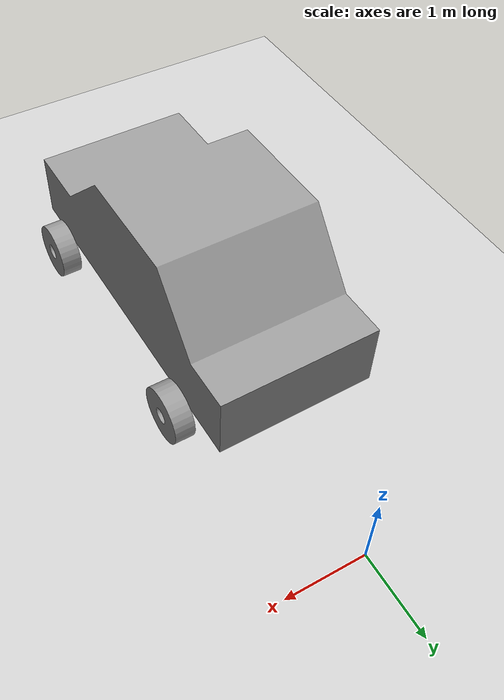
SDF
<sdf version="1.7">
 <world name="default">
  <light name="sun" type="directional">
   <pose>0 0 10 0 -0 0</pose>
   <diffuse>0.8 0.8 0.8 1</diffuse>
   <specular>0.2 0.2 0.2 1</specular>
   <attenuation>
    <range>1000</range>
    <constant>0.9</constant>
    <linear>0.01</linear>
    <quadratic>0.001</quadratic>
   </attenuation>
   <direction>-0.5 0.1 -0.9</direction>
   <spot><inner_angle>0</inner_angle><outer_angle>0</outer_angle><falloff>0</falloff></spot>
  </light>
  <model name="ground_plane">
   <static>1</static>
   <link name="link">
    <collision name="collision">
     <geometry><plane><normal>0 0 1</normal><size>100 100</size></plane></geometry>
     <surface>
      <contact><collide_bitmask>65535</collide_bitmask></contact>
      <friction><ode><mu>100</mu><mu2>50</mu2></ode></friction>
     </surface>
    </collision>
    <visual name="visual">
     <cast_shadows>0</cast_shadows>
     <geometry><plane><normal>0 0 1</normal><size>100 100</size></plane></geometry>
     <material>
      <script><uri>file://media/materials/scripts/gazebo.material</uri><name>Gazebo/Grey</name></script>
     </material>
    </visual>
   </link>
  </model>
  <gravity>0 0 -9.8</gravity>
  <magnetic_field>6e-06 2.3e-05 -4.2e-05</magnetic_field>
  <atmosphere type="adiabatic"/>
  <physics type="ode">
   <max_step_size>0.001</max_step_size>
   <real_time_factor>1</real_time_factor>
   <real_time_update_rate>1000</real_time_update_rate>
  </physics>
  <scene><ambient>0.4 0.4 0.4 1</ambient><background>0.7 0.7 0.7 1</background><shadows>1</shadows></scene>
  <audio><device>default</device></audio>
  <spherical_coordinates>
   <surface_model>EARTH_WGS84</surface_model>
   <latitude_deg>0</latitude_deg>
   <longitude_deg>0</longitude_deg>
   <elevation>0</elevation>
   <heading_deg>0</heading_deg>
  </spherical_coordinates>
  <model name="car_model_full">
   <link name="link_0">
    <inertial>
     <mass>1</mass>
     <inertia>
      <ixx>0.166667</ixx>
      <ixy>0</ixy>
      <ixz>0</ixz>
      <iyy>0.166667</iyy>
      <iyz>0</iyz>
      <izz>0.166667</izz>
     </inertia>
    </inertial>
    <pose>0 0 0.35 0 -0 0</pose>
    <visual name="visual">
     <geometry>
      <mesh>
       <uri>/home/allsparknouvaneonss/Documents/Linux_Developer/my_linux_codes/Robotics/ROS/my_robot_car_ws_ROS/blender_model/car_chasis.dae</uri>
       <scale>1 1 1</scale>
      </mesh>
     </geometry>
     <material>
      <lighting>1</lighting>
      <script><uri>file://media/materials/scripts/gazebo.material</uri><name>Gazebo/Grey</name></script>
      <shader type="pixel"><normal_map>__default__</normal_map></shader>
      <ambient>0.3 0.3 0.3 1</ambient>
      <diffuse>0.7 0.7 0.7 1</diffuse>
      <specular>0.01 0.01 0.01 1</specular>
      <emissive>0 0 0 1</emissive>
     </material>
    </visual>
    <collision name="collision">
     <geometry>
      <mesh>
       <uri>/home/allsparknouvaneonss/Documents/Linux_Developer/my_linux_codes/Robotics/ROS/my_robot_car_ws_ROS/blender_model/car_chasis.dae</uri>
       <scale>1 1 1</scale>
      </mesh>
     </geometry>
     <surface>
      <friction>
       <ode><mu>1</mu><mu2>1</mu2><fdir1>0 0 0</fdir1><slip1>0</slip1><slip2>0</slip2></ode>
       <torsional>
        <coefficient>1</coefficient>
        <patch_radius>0</patch_radius>
        <surface_radius>0</surface_radius>
        <use_patch_radius>1</use_patch_radius>
        <ode><slip>0</slip></ode>
       </torsional>
      </friction>
      <bounce><restitution_coefficient>0</restitution_coefficient><threshold>1e+06</threshold></bounce>
      <contact>
       <collide_without_contact>0</collide_without_contact>
       <collide_without_contact_bitmask>1</collide_without_contact_bitmask>
       <collide_bitmask>1</collide_bitmask>
       <ode>
        <soft_cfm>0</soft_cfm>
        <soft_erp>0.2</soft_erp>
        <kp>1e+13</kp>
        <kd>1</kd>
        <max_vel>0.01</max_vel>
        <min_depth>0</min_depth>
       </ode>
       <bullet>
        <split_impulse>1</split_impulse>
        <split_impulse_penetration_threshold>-0.01</split_impulse_penetration_threshold>
        <soft_cfm>0</soft_cfm>
        <soft_erp>0.2</soft_erp>
        <kp>1e+13</kp>
        <kd>1</kd>
       </bullet>
      </contact>
     </surface>
    </collision>
   </link>
   <link name="link_1">
    <inertial>
     <mass>1</mass>
     <inertia>
      <ixx>0.166667</ixx>
      <ixy>0</ixy>
      <ixz>0</ixz>
      <iyy>0.166667</iyy>
      <iyz>0</iyz>
      <izz>0.166667</izz>
     </inertia>
    </inertial>
    <pose>1.2 -1.5 0.35 0 -0 0</pose>
    <visual name="visual">
     <geometry>
      <mesh>
       <uri>/home/allsparknouvaneonss/Documents/Linux_Developer/my_linux_codes/Robotics/ROS/my_robot_car_ws_ROS/blender_model/car_chasisi_wheel.dae</uri>
       <scale>1 1 1</scale>
      </mesh>
     </geometry>
     <material>
      <lighting>1</lighting>
      <script><uri>file://media/materials/scripts/gazebo.material</uri><name>Gazebo/Grey</name></script>
      <shader type="pixel"><normal_map>__default__</normal_map></shader>
      <ambient>0.3 0.3 0.3 1</ambient>
      <diffuse>0.7 0.7 0.7 1</diffuse>
      <specular>0.01 0.01 0.01 1</specular>
      <emissive>0 0 0 1</emissive>
     </material>
    </visual>
    <collision name="collision">
     <geometry>
      <mesh>
       <uri>/home/allsparknouvaneonss/Documents/Linux_Developer/my_linux_codes/Robotics/ROS/my_robot_car_ws_ROS/blender_model/car_chasisi_wheel.dae</uri>
       <scale>1 1 1</scale>
      </mesh>
     </geometry>
     <surface>
      <friction>
       <ode><mu>1</mu><mu2>1</mu2><fdir1>0 0 0</fdir1><slip1>0</slip1><slip2>0</slip2></ode>
       <torsional>
        <coefficient>1</coefficient>
        <patch_radius>0</patch_radius>
        <surface_radius>0</surface_radius>
        <use_patch_radius>1</use_patch_radius>
        <ode><slip>0</slip></ode>
       </torsional>
      </friction>
      <bounce><restitution_coefficient>0</restitution_coefficient><threshold>1e+06</threshold></bounce>
      <contact>
       <collide_without_contact>0</collide_without_contact>
       <collide_without_contact_bitmask>1</collide_without_contact_bitmask>
       <collide_bitmask>1</collide_bitmask>
       <ode>
        <soft_cfm>0</soft_cfm>
        <soft_erp>0.2</soft_erp>
        <kp>1e+13</kp>
        <kd>1</kd>
        <max_vel>0.01</max_vel>
        <min_depth>0</min_depth>
       </ode>
       <bullet>
        <split_impulse>1</split_impulse>
        <split_impulse_penetration_threshold>-0.01</split_impulse_penetration_threshold>
        <soft_cfm>0</soft_cfm>
        <soft_erp>0.2</soft_erp>
        <kp>1e+13</kp>
        <kd>1</kd>
       </bullet>
      </contact>
     </surface>
    </collision>
   </link>
   <link name="link_1_clone">
    <inertial>
     <mass>1</mass>
     <inertia>
      <ixx>0.166667</ixx>
      <ixy>0</ixy>
      <ixz>0</ixz>
      <iyy>0.166667</iyy>
      <iyz>0</iyz>
      <izz>0.166667</izz>
     </inertia>
    </inertial>
    <pose>-1.2 -1.5 0.35 0 -0 0</pose>
    <visual name="visual">
     <geometry>
      <mesh>
       <uri>/home/allsparknouvaneonss/Documents/Linux_Developer/my_linux_codes/Robotics/ROS/my_robot_car_ws_ROS/blender_model/car_chasisi_wheel.dae</uri>
       <scale>1 1 1</scale>
      </mesh>
     </geometry>
     <material>
      <lighting>1</lighting>
      <script><uri>file://media/materials/scripts/gazebo.material</uri><name>Gazebo/Grey</name></script>
      <shader type="pixel"><normal_map>__default__</normal_map></shader>
      <ambient>0.3 0.3 0.3 1</ambient>
      <diffuse>0.7 0.7 0.7 1</diffuse>
      <specular>0.01 0.01 0.01 1</specular>
      <emissive>0 0 0 1</emissive>
     </material>
    </visual>
    <collision name="collision">
     <geometry>
      <mesh>
       <uri>/home/allsparknouvaneonss/Documents/Linux_Developer/my_linux_codes/Robotics/ROS/my_robot_car_ws_ROS/blender_model/car_chasisi_wheel.dae</uri>
       <scale>1 1 1</scale>
      </mesh>
     </geometry>
     <surface>
      <friction>
       <ode><mu>1</mu><mu2>1</mu2><fdir1>0 0 0</fdir1><slip1>0</slip1><slip2>0</slip2></ode>
       <torsional>
        <coefficient>1</coefficient>
        <patch_radius>0</patch_radius>
        <surface_radius>0</surface_radius>
        <use_patch_radius>1</use_patch_radius>
        <ode><slip>0</slip></ode>
       </torsional>
      </friction>
      <bounce><restitution_coefficient>0</restitution_coefficient><threshold>1e+06</threshold></bounce>
      <contact>
       <collide_without_contact>0</collide_without_contact>
       <collide_without_contact_bitmask>1</collide_without_contact_bitmask>
       <collide_bitmask>1</collide_bitmask>
       <ode>
        <soft_cfm>0</soft_cfm>
        <soft_erp>0.2</soft_erp>
        <kp>1e+13</kp>
        <kd>1</kd>
        <max_vel>0.01</max_vel>
        <min_depth>0</min_depth>
       </ode>
       <bullet>
        <split_impulse>1</split_impulse>
        <split_impulse_penetration_threshold>-0.01</split_impulse_penetration_threshold>
        <soft_cfm>0</soft_cfm>
        <soft_erp>0.2</soft_erp>
        <kp>1e+13</kp>
        <kd>1</kd>
       </bullet>
      </contact>
     </surface>
    </collision>
   </link>
   <link name="link_1_clone_0">
    <inertial>
     <mass>1</mass>
     <inertia>
      <ixx>0.166667</ixx>
      <ixy>0</ixy>
      <ixz>0</ixz>
      <iyy>0.166667</iyy>
      <iyz>0</iyz>
      <izz>0.166667</izz>
     </inertia>
    </inertial>
    <pose>1.2 1.5 0.35 0 -0 0</pose>
    <visual name="visual">
     <geometry>
      <mesh>
       <uri>/home/allsparknouvaneonss/Documents/Linux_Developer/my_linux_codes/Robotics/ROS/my_robot_car_ws_ROS/blender_model/car_chasisi_wheel.dae</uri>
       <scale>1 1 1</scale>
      </mesh>
     </geometry>
     <material>
      <lighting>1</lighting>
      <script><uri>file://media/materials/scripts/gazebo.material</uri><name>Gazebo/Grey</name></script>
      <shader type="pixel"><normal_map>__default__</normal_map></shader>
      <ambient>0.3 0.3 0.3 1</ambient>
      <diffuse>0.7 0.7 0.7 1</diffuse>
      <specular>0.01 0.01 0.01 1</specular>
      <emissive>0 0 0 1</emissive>
     </material>
    </visual>
    <collision name="collision">
     <geometry>
      <mesh>
       <uri>/home/allsparknouvaneonss/Documents/Linux_Developer/my_linux_codes/Robotics/ROS/my_robot_car_ws_ROS/blender_model/car_chasisi_wheel.dae</uri>
       <scale>1 1 1</scale>
      </mesh>
     </geometry>
     <surface>
      <friction>
       <ode><mu>1</mu><mu2>1</mu2><fdir1>0 0 0</fdir1><slip1>0</slip1><slip2>0</slip2></ode>
       <torsional>
        <coefficient>1</coefficient>
        <patch_radius>0</patch_radius>
        <surface_radius>0</surface_radius>
        <use_patch_radius>1</use_patch_radius>
        <ode><slip>0</slip></ode>
       </torsional>
      </friction>
      <bounce><restitution_coefficient>0</restitution_coefficient><threshold>1e+06</threshold></bounce>
      <contact>
       <collide_without_contact>0</collide_without_contact>
       <collide_without_contact_bitmask>1</collide_without_contact_bitmask>
       <collide_bitmask>1</collide_bitmask>
       <ode>
        <soft_cfm>0</soft_cfm>
        <soft_erp>0.2</soft_erp>
        <kp>1e+13</kp>
        <kd>1</kd>
        <max_vel>0.01</max_vel>
        <min_depth>0</min_depth>
       </ode>
       <bullet>
        <split_impulse>1</split_impulse>
        <split_impulse_penetration_threshold>-0.01</split_impulse_penetration_threshold>
        <soft_cfm>0</soft_cfm>
        <soft_erp>0.2</soft_erp>
        <kp>1e+13</kp>
        <kd>1</kd>
       </bullet>
      </contact>
     </surface>
    </collision>
   </link>
   <link name="link_1_clone_1">
    <inertial>
     <mass>1</mass>
     <inertia>
      <ixx>0.166667</ixx>
      <ixy>0</ixy>
      <ixz>0</ixz>
      <iyy>0.166667</iyy>
      <iyz>0</iyz>
      <izz>0.166667</izz>
     </inertia>
    </inertial>
    <pose>-1.2 1.5 0.35 0 -0 0</pose>
    <visual name="visual">
     <geometry>
      <mesh>
       <uri>/home/allsparknouvaneonss/Documents/Linux_Developer/my_linux_codes/Robotics/ROS/my_robot_car_ws_ROS/blender_model/car_chasisi_wheel.dae</uri>
       <scale>1 1 1</scale>
      </mesh>
     </geometry>
     <material>
      <lighting>1</lighting>
      <script><uri>file://media/materials/scripts/gazebo.material</uri><name>Gazebo/Grey</name></script>
      <shader type="pixel"><normal_map>__default__</normal_map></shader>
      <ambient>0.3 0.3 0.3 1</ambient>
      <diffuse>0.7 0.7 0.7 1</diffuse>
      <specular>0.01 0.01 0.01 1</specular>
      <emissive>0 0 0 1</emissive>
     </material>
    </visual>
    <collision name="collision">
     <geometry>
      <mesh>
       <uri>/home/allsparknouvaneonss/Documents/Linux_Developer/my_linux_codes/Robotics/ROS/my_robot_car_ws_ROS/blender_model/car_chasisi_wheel.dae</uri>
       <scale>1 1 1</scale>
      </mesh>
     </geometry>
     <surface>
      <friction>
       <ode><mu>1</mu><mu2>1</mu2><fdir1>0 0 0</fdir1><slip1>0</slip1><slip2>0</slip2></ode>
       <torsional>
        <coefficient>1</coefficient>
        <patch_radius>0</patch_radius>
        <surface_radius>0</surface_radius>
        <use_patch_radius>1</use_patch_radius>
        <ode><slip>0</slip></ode>
       </torsional>
      </friction>
      <bounce><restitution_coefficient>0</restitution_coefficient><threshold>1e+06</threshold></bounce>
      <contact>
       <collide_without_contact>0</collide_without_contact>
       <collide_without_contact_bitmask>1</collide_without_contact_bitmask>
       <collide_bitmask>1</collide_bitmask>
       <ode>
        <soft_cfm>0</soft_cfm>
        <soft_erp>0.2</soft_erp>
        <kp>1e+13</kp>
        <kd>1</kd>
        <max_vel>0.01</max_vel>
        <min_depth>0</min_depth>
       </ode>
       <bullet>
        <split_impulse>1</split_impulse>
        <split_impulse_penetration_threshold>-0.01</split_impulse_penetration_threshold>
        <soft_cfm>0</soft_cfm>
        <soft_erp>0.2</soft_erp>
        <kp>1e+13</kp>
        <kd>1</kd>
       </bullet>
      </contact>
     </surface>
    </collision>
   </link>
   <joint name="Front_Left" type="revolute">
    <parent>link_0</parent>
    <child>link_1</child>
    <axis>
     <xyz>1 0 0</xyz>
     <limit>
      <lower>-1.79769e+308</lower>
      <upper>1.79769e+308</upper>
      <effort>-1</effort>
      <velocity>-1</velocity>
     </limit>
     <dynamics>
      <spring_reference>0</spring_reference>
      <spring_stiffness>0</spring_stiffness>
      <damping>0</damping>
      <friction>0</friction>
     </dynamics>
    </axis>
    <physics>
     <ode><limit><cfm>0</cfm><erp>0.2</erp></limit><suspension><cfm>0</cfm><erp>0.2</erp></suspension></ode>
    </physics>
   </joint>
   <joint name="Front_Right" type="revolute">
    <parent>link_0</parent>
    <child>link_1_clone</child>
    <axis>
     <xyz>1 0 0</xyz>
     <limit>
      <lower>-1.79769e+308</lower>
      <upper>1.79769e+308</upper>
      <effort>-1</effort>
      <velocity>-1</velocity>
     </limit>
     <dynamics>
      <spring_reference>0</spring_reference>
      <spring_stiffness>0</spring_stiffness>
      <damping>0</damping>
      <friction>0</friction>
     </dynamics>
    </axis>
    <physics>
     <ode><limit><cfm>0</cfm><erp>0.2</erp></limit><suspension><cfm>0</cfm><erp>0.2</erp></suspension></ode>
    </physics>
   </joint>
   <joint name="Back_Left" type="revolute">
    <parent>link_0</parent>
    <child>link_1_clone_0</child>
    <axis>
     <xyz>1 0 0</xyz>
     <limit>
      <lower>-1.79769e+308</lower>
      <upper>1.79769e+308</upper>
      <effort>-1</effort>
      <velocity>-1</velocity>
     </limit>
     <dynamics>
      <spring_reference>0</spring_reference>
      <spring_stiffness>0</spring_stiffness>
      <damping>0</damping>
      <friction>0</friction>
     </dynamics>
    </axis>
    <physics>
     <ode><limit><cfm>0</cfm><erp>0.2</erp></limit><suspension><cfm>0</cfm><erp>0.2</erp></suspension></ode>
    </physics>
   </joint>
   <joint name="Back_Right" type="revolute">
    <parent>link_0</parent>
    <child>link_1_clone_1</child>
    <axis>
     <xyz>1 0 0</xyz>
     <limit>
      <lower>-1.79769e+308</lower>
      <upper>1.79769e+308</upper>
      <effort>-1</effort>
      <velocity>-1</velocity>
     </limit>
     <dynamics>
      <spring_reference>0</spring_reference>
      <spring_stiffness>0</spring_stiffness>
      <damping>0</damping>
      <friction>0</friction>
     </dynamics>
    </axis>
    <physics>
     <ode><limit><cfm>0</cfm><erp>0.2</erp></limit><suspension><cfm>0</cfm><erp>0.2</erp></suspension></ode>
    </physics>
   </joint>
   <static>0</static>
   <pose>-0.142224 -3.87278 -0.000461 0.000112 0.000216 0.015811</pose>
  </model>
 </world>
</sdf>
